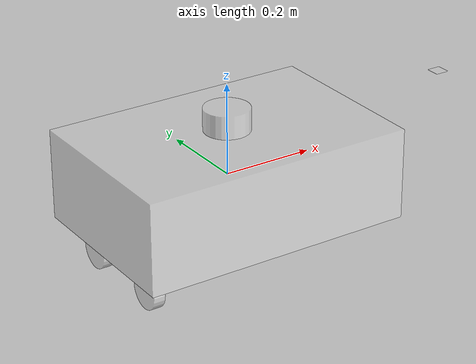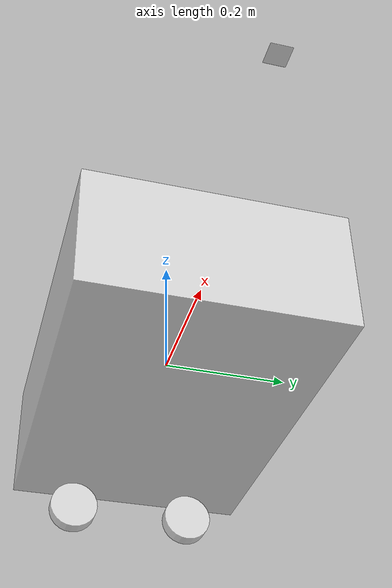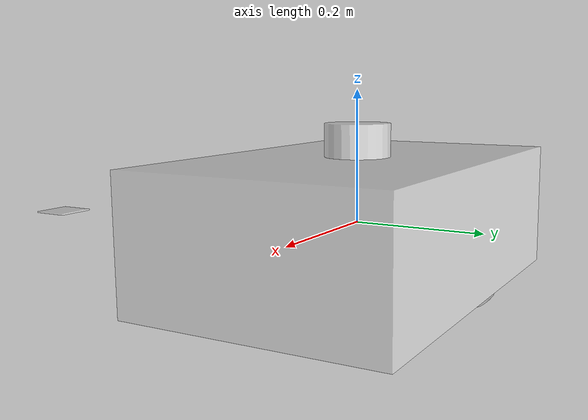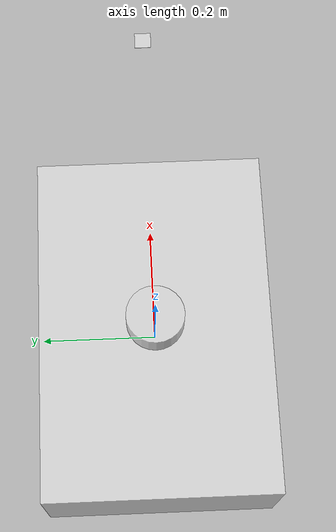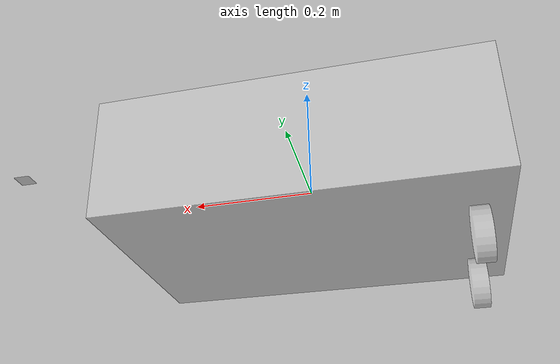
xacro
<?xml version="1.0" ?>

<robot name="karaburan" xmlns:xacro="http://www.ros.org/wiki/xacro">
  <material name="black">
     <color rgba="0.9 0.9 0.9 0.8" />
  </material>

  <link name="base_footprint" />

  <link name="base_link">
    <visual>
      <geometry>
        <box size="0.6 0.4 0.2" />
      </geometry>
      <origin xyz="0 0 0.1" rpy="0 0 0" />
      <material name="black" />
    </visual>
    <collision>
      <geometry>
        <box size="0.6 0.4 0.2" />
      </geometry>
      <origin xyz="0 0 0.1" rpy="0 0 0" />
    </collision>
  </link>

  <link name="imu">
    <visual>
      <geometry>
        <box size="0.03 0.03 0.001"/>
      </geometry>
      <origin xyz="0 0 0" rpy="0 0 0" />
      <material name="black" />
    </visual>
    <collision>
    </collision>
  </link>

  <link name="lidar">
    <visual>
      <geometry>
        <cylinder radius="0.05" length="0.05" />
      </geometry>
      <origin xyz="0 0 0" rpy="0 0 0" />
      <material name="black" />
    </visual>
    <collision>
      <geometry>
        <box size="0.1 0.1 0.05" />
      </geometry>
      <origin xyz="0 0 0" rpy="0 0 0" />
      <material name="black" />
    </collision>
  </link>

  <joint name="base_joint" type="fixed">
    <parent link="base_footprint" />
    <child link="base_link" />
    <origin xyz="0 0 -0.1" rpy="0 0 0" />
  </joint>

  <joint name="base_imu_joint" type="fixed">
    <parent link="base_link" />
    <child link="imu" />
    <origin xyz="0.55 0 0.201" rpy="0 0 0" />
  </joint>

  <xacro:macro name="prop_link" params="prefix">
    <link name="${prefix}_prop">
      <visual>
        <geometry>
          <cylinder radius="0.04" length="0.025" />
        </geometry>
        <origin xyz="0 0 0" rpy="0 1.57 0" />
        <material name="black" />
      </visual>
    </link>
  </xacro:macro>

  <xacro:prop_link prefix="left" />
  <xacro:prop_link prefix="right" />

  <joint name="base_lidar_joint" type="fixed">
    <parent link="base_link" />
    <child link="lidar" />
    <origin xyz="0 0 0.225" rpy="0 0 0" />
  </joint>

  <joint name="base_left_prop_joint" type="continuous">
    <parent link="base_link" />
    <child link="left_prop" />
    <origin xyz="-0.25 0.1 -0.045" rpy="0 0 0" />
    <axis xyz="1 0 0" />
  </joint>

  <joint name="base_right_prop_joint" type="continuous">
    <parent link="base_link" />
    <child link="right_prop" />
    <origin xyz="-0.25 -0.1 -0.045" rpy="0 0 0" />
    <axis xyz="1 0 0" />
  </joint>
</robot>
